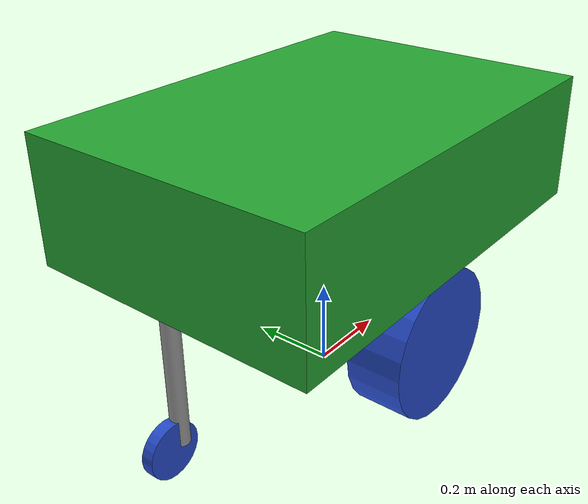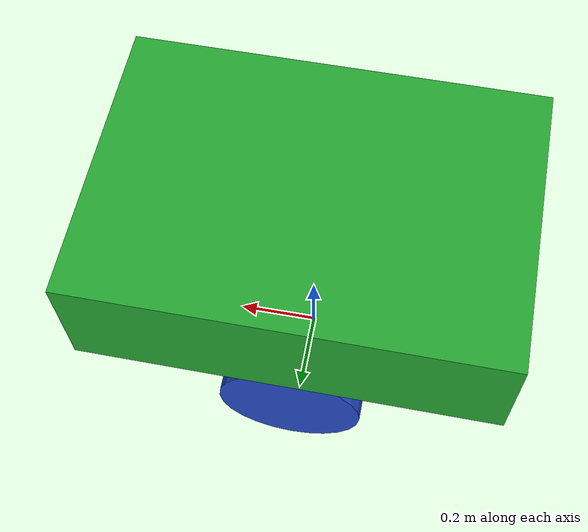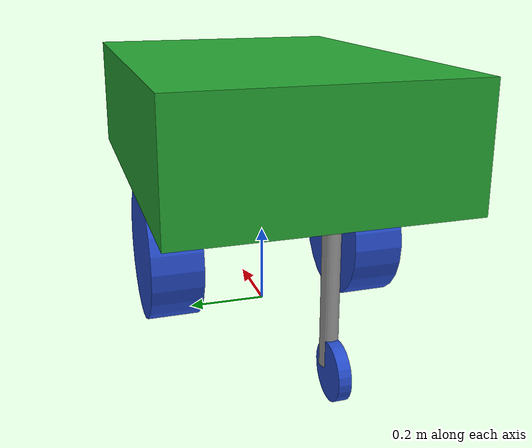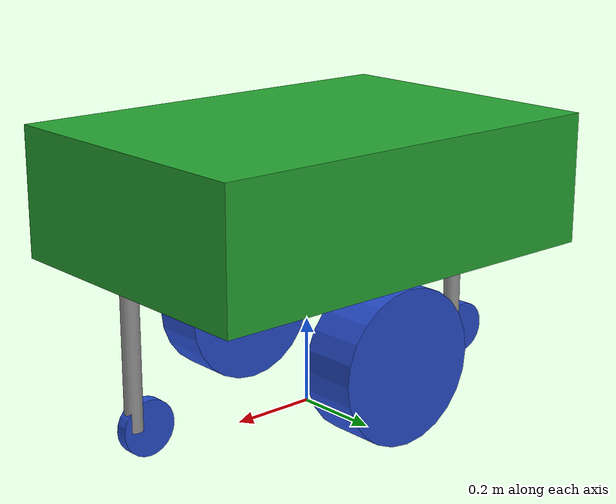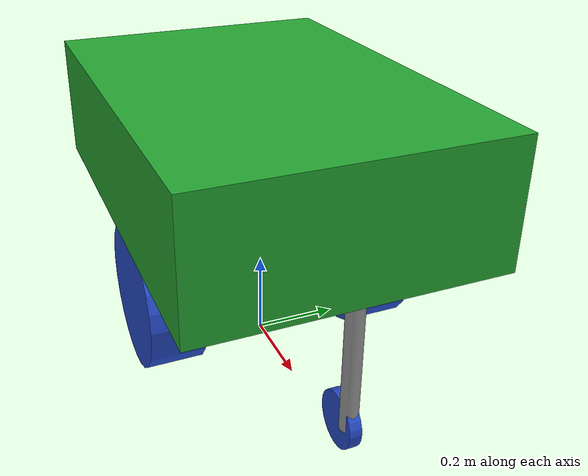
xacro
<?xml version="1.0"?>
<robot xmlns:xacro="http://www.ros.org/wiki/xacro">

    <xacro:property name="wheel_r" value="0.175" /> <!-- without load the wheel diameter is 0.35 (radius = 0.175) so might go between 0.16 - 0.17 with standard load -->
    <xacro:property name="wheel_l" value="0.13" />
    <xacro:property name="wheel_axis_h" value="0.18802" />

    <xacro:property name="hinge_l" value="${wheel_r - small_wheel_r + wheel_axis_h}" />
    <xacro:property name="hinge_r" value="0.02" />

    <xacro:property name="small_wheel_r" value="0.063" />
    <xacro:property name="small_wheel_l" value="0.028" />
    <xacro:property name="axis_dist" value="0.03" />

    <xacro:property name="base_l" value="1.0" />
    <xacro:property name="base_w" value="0.7" />
    <xacro:property name="base_h" value="0.3" />
    <xacro:property name="base_xyz" value="0 0 0" /> <!-- ${base_h / 2} : what z used to be -->
    <xacro:property name="wheel_rpy" value="${pi / 2.0} 0 0" />

    <xacro:property name="camera_l" value="0.01" />
    <xacro:property name="camera_w" value="0.1" />
    <xacro:property name="camera_h" value="0.05" />

    <!-- body -->

    <link name="base_footprint" />

    <link name="base_link">
        <visual>
            <geometry>
                <box size="${base_l} ${base_w} ${base_h}" />
            </geometry>
            <origin xyz="${base_xyz}" rpy="0 0 0" />
            <material name="green" />
        </visual>
        <collision>
            <geometry>
                <box size="${base_l} ${base_w} ${base_h}" />
            </geometry>
            <origin xyz="${base_xyz}" rpy="0 0 0" />
        </collision>
        <xacro:box_inertia mass="25.0" l="${2*base_l}" w="${2*base_w}" h="${2*base_h}" xyz="${base_xyz}" rpy="0 0 0" />
    </link>

    <joint name="footprint_base_joint" type="fixed">
        <parent link="base_footprint" />
        <child link="base_link" />
        <origin xyz="0 0 ${wheel_r + wheel_axis_h + (base_h / 2.0)}" rpy="0 0 0" /> <!-- + (base_h / 2) -->
    </joint>

    <!-- wheel funtions -->

    <xacro:macro name="create_wheel_link" params="prefix">

    <link name="${prefix}_wheel_link">
        <visual>
            <geometry>
                <cylinder radius="${wheel_r}" length="${wheel_l}" />
            </geometry>
            <origin xyz="0 0 0" rpy="${wheel_rpy}" />
            <material name="blue" />
        </visual>
        <collision>
            <geometry>
                <cylinder radius="${wheel_r}" length="${wheel_l}" />
            </geometry>
            <origin xyz="0 0 0" rpy="${wheel_rpy}" />
        </collision>
        <xacro:wheel_inertia mass="3.0" l="${2*wheel_l}" r="${2*wheel_r}" xyz="0 0 0" rpy="${wheel_rpy}" />
    </link>

    </xacro:macro>

    <xacro:macro name="create_small_wheel_link" params="prefix">

    <link name="${prefix}_wheel_link">
        <visual>
            <geometry>
                <cylinder radius="${small_wheel_r}" length="${small_wheel_l}" />
            </geometry>
            <origin xyz="0 0 0" rpy="${wheel_rpy}" />
            <material name="blue" />
        </visual>
        <collision>
            <geometry>
                <cylinder radius="${small_wheel_r}" length="${small_wheel_l}" />
            </geometry>
            <origin xyz="0 0 0" rpy="${wheel_rpy}" />
        </collision>
        <xacro:wheel_inertia mass="1.5" l="${2*small_wheel_l}" r="${2*small_wheel_r}" xyz="0 0 0" rpy="${wheel_rpy}" />
    </link>

    </xacro:macro>

    <!-- wheels creations -->

    <xacro:create_wheel_link prefix="left" />

    <joint name="left_wheel_joint" type="continuous">
        <parent link="base_link" />
        <child link="left_wheel_link" />
        <origin xyz="0 ${(base_w - wheel_r) / 2} ${-(base_h / 2) - wheel_axis_h}" rpy="0 0 0" />
        <axis xyz="0 1 0" />
        <limit velocity="100.0" effort="100.0" />
    </joint>

    <xacro:create_wheel_link prefix="right" />

    <joint name="right_wheel_joint" type="continuous">
        <parent link="base_link" />
        <child link="right_wheel_link" />
        <origin xyz="0 ${-((base_w - wheel_r) / 2)} ${-(base_h / 2) - wheel_axis_h}" rpy="0 0 0" />
         <axis xyz="0 1 0" />
    </joint>

    <!-- Front -->

    <link name="front_hinge">
        <visual>
            <geometry>
                <cylinder radius="${hinge_r}" length="${hinge_l}" />
            </geometry>
            <origin xyz="0 0 ${hinge_l / 2.0}" rpy="0 0 0" />
            <material name="grey" />
        </visual>
        <collision>
            <geometry>
                <cylinder radius="${hinge_r}" length="${hinge_l}" />
            </geometry>
            <origin xyz="0 0 ${hinge_l / 2.0}" rpy="0 0 0" />
        </collision>
        <xacro:wheel_inertia mass="0.5" l="${2*hinge_l}" r="${2*hinge_r}" xyz="0 0 ${hinge_l / 2.0}" rpy="0 0 0" />
    </link>

    <joint name="front_hinge_joint" type="continuous">
        <parent link="base_link" />
        <child link="front_hinge" />
        <origin xyz="0.48 0 ${-((base_h / 2.0) + wheel_r - small_wheel_r + wheel_axis_h)}" rpy="0 0 0" />
        <axis xyz="0 0 1" />
    </joint>

    <xacro:create_small_wheel_link prefix="front" />

    <joint name="front_wheel_joint" type="continuous">
        <parent link="front_hinge" />
        <child link="front_wheel_link" />
        <origin xyz="${-axis_dist} 0 0" rpy="0 0 0" />
        <axis xyz="0 1 0" />
    </joint>

    <!-- Rear -->

    <link name="rear_hinge">
        <visual>
            <geometry>
                <cylinder radius="${hinge_r}" length="${hinge_l}" />
            </geometry>
            <origin xyz="0 0 ${(hinge_l) / 2.0}" rpy="0 0 0" />
            <material name="grey" />
        </visual>
        <collision>
            <geometry>
                <cylinder radius="${hinge_r}" length="${hinge_l}" />
            </geometry>
            <origin xyz="0 0 ${(hinge_l) / 2.0}" rpy="0 0 0" />
        </collision>
        <xacro:wheel_inertia mass="0.5" l="${2*hinge_l}" r="${2*hinge_r}" xyz="0 0 ${(hinge_l) / 2.0}" rpy="0 0 0" />
    </link>

    <joint name="rear_hinge_joint" type="continuous">
        <parent link="base_link" />
        <child link="rear_hinge" />
        <origin xyz="-0.48 0 ${-((base_h / 2) + wheel_r - small_wheel_r + wheel_axis_h)}" rpy="0 0 0" />
        <axis xyz="0 0 1" />
    </joint>

    <xacro:create_small_wheel_link prefix="rear" />

    <joint name="rear_wheel_joint" type="continuous">
        <parent link="rear_hinge" />
        <child link="rear_wheel_link" />
        <origin xyz="${-axis_dist} 0 0" rpy="0 0 0" />
         <axis xyz="0 1 0" />
    </joint>

</robot>
